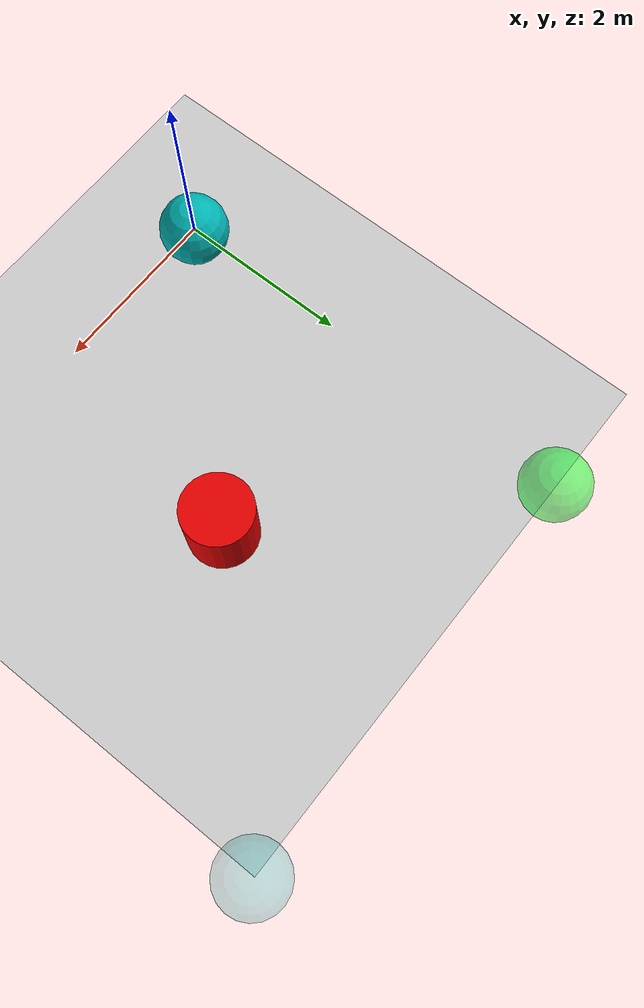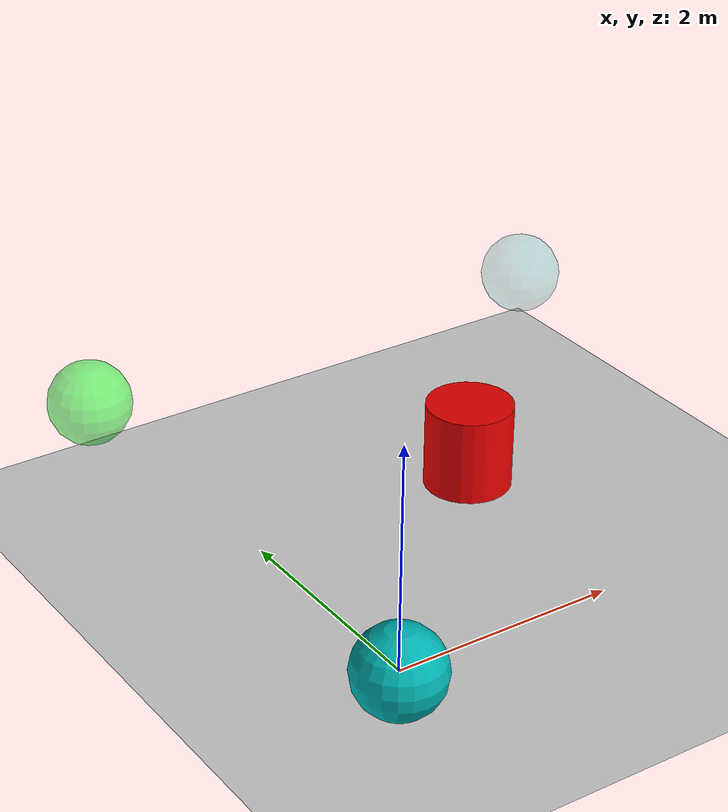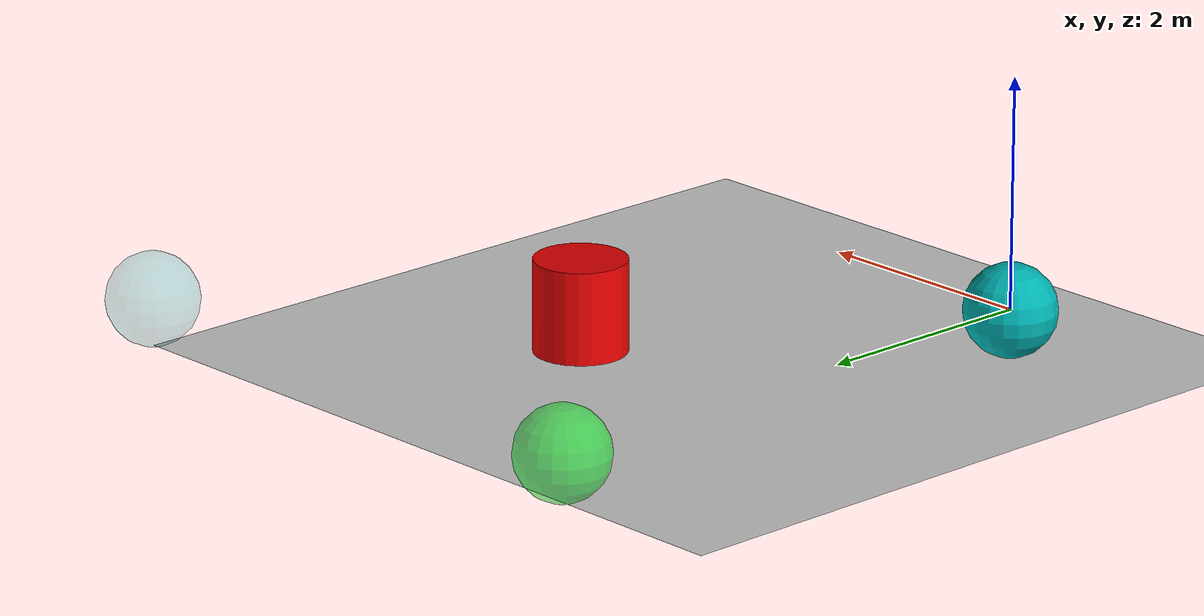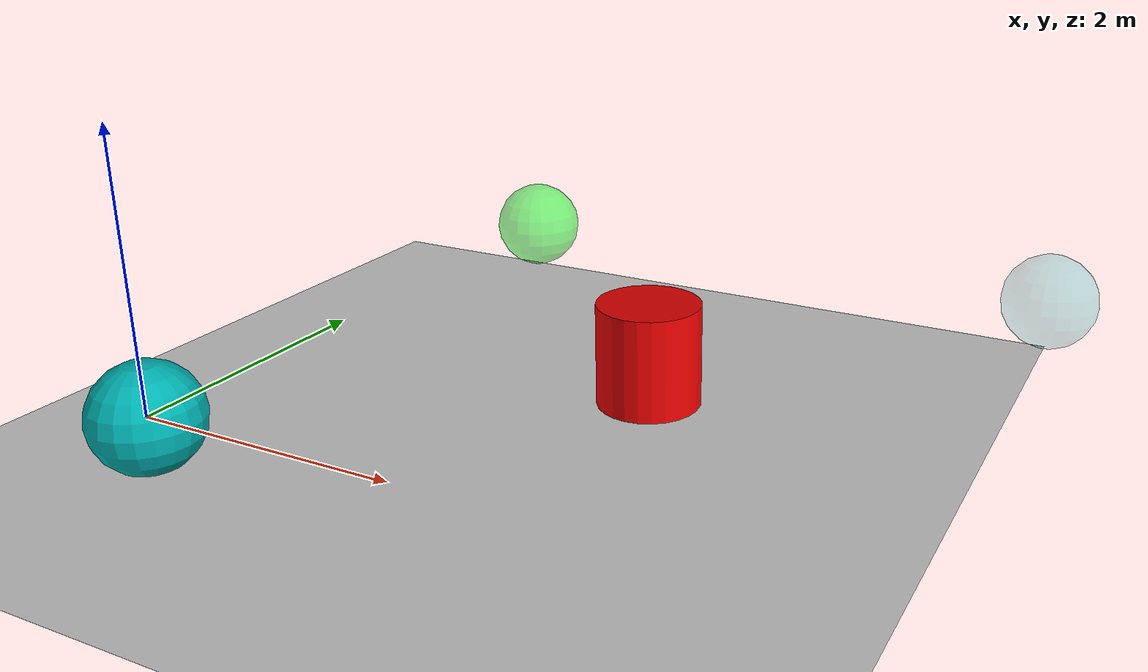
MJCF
<mujoco>
    <option gravity="0 0 0" timestep="0.005"/>
    <worldbody>
        <geom name='floor' pos='0 0 -0.4' size='5 5 .125' type='plane' condim='3' rgba=" .8 .8 .8 1"/>
        <body name="ball" pos="0 0 0">
            <light diffuse="1 1 1" pos="0 0 2" dir="0 0 -1" />

            <joint axis="1 0 0" damping="0" name="slide0" pos="0 0 0" type="slide"/>
            <joint axis="0 1 0" damping="0" name="slide1" pos="0 0 0" type="slide"/>
            <geom type="sphere" size="0.4" mass="100" rgba="0 .7 0.7 1"/>
        </body>
	<body mocap="true" name="mocap1" pos="0 5 0">
        mak
			<geom conaffinity="0" contype="0" pos="0 0 0" rgba="0 1 0.1 0.5" size="0.4" type="sphere" />
	</body>
	<body mocap="true" name="mocap_start" pos="0 0 0">

			<geom conaffinity="0" contype="0" pos="0 0 0" rgba="0 0.7 0.7 0.25" size="0.4" type="sphere" />
	</body>
	<body mocap="true" name="mocap_goal" pos="5 5 0">

			<geom conaffinity="0" contype="0" pos="0 0 0" rgba="0 0.7 0.7 0.25" size="0.4" type="sphere" />
	</body>

	 <body name="obstacle2" pos="2.5 2.5 0">
            <light name="light2" pos="0 0 2" mode="fixed" />
            <geom mass="100" size="0.4 0.4" type="cylinder" rgba="0.9 0 0 1"/>
        </body>
    </worldbody>
    <actuator>
        <motor gear="1" joint="slide0"/>
        <motor gear="1" joint="slide1"/>
    </actuator>
</mujoco>
